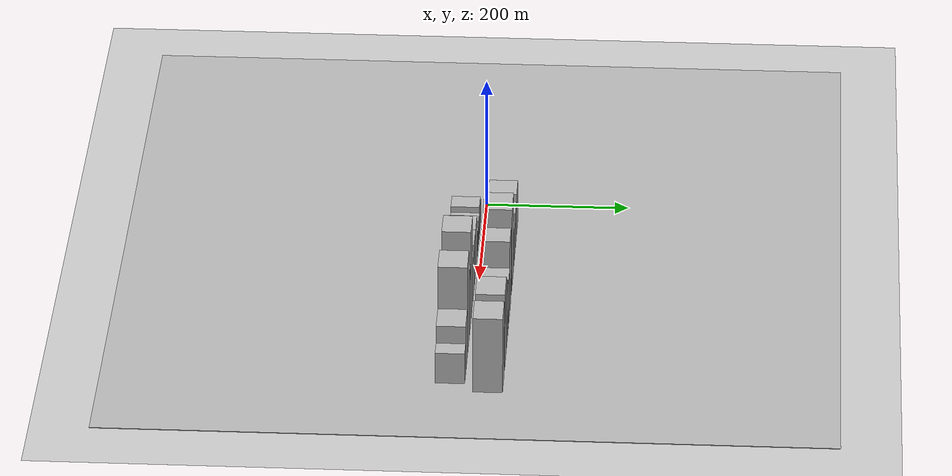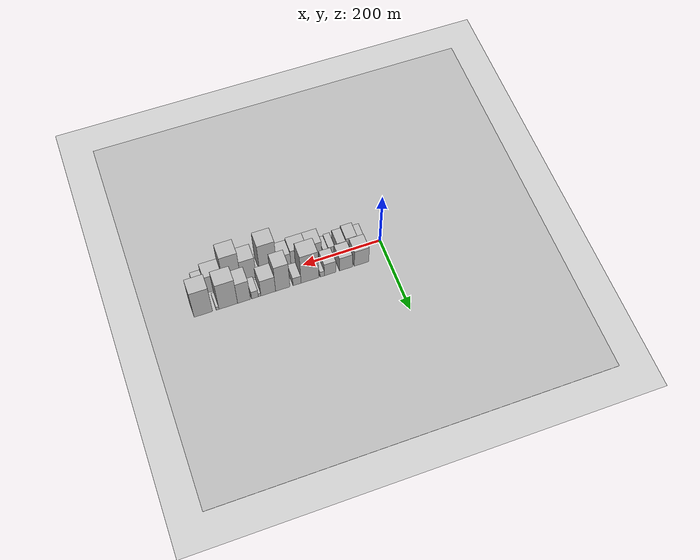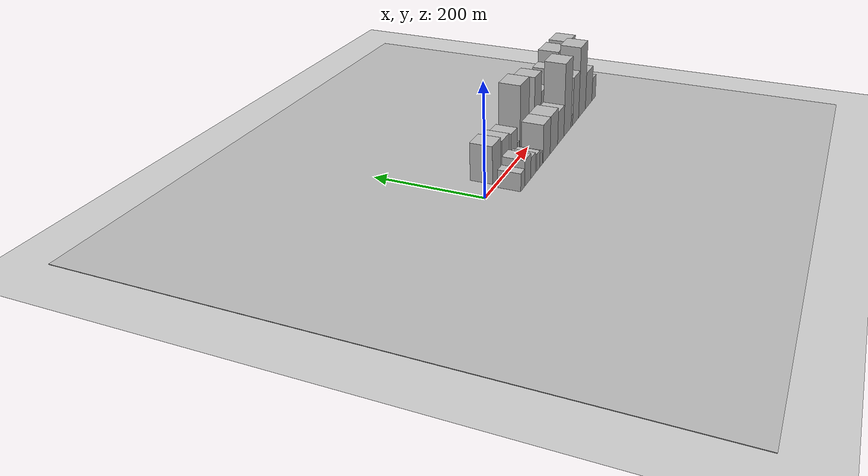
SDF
<?xml version="1.0" encoding="utf-8"?>

<sdf version="1.6">

   <world name="default">

      <gui fullscreen="0">

         <camera name="user_camera">

            <pose>-15 0 4.57585 0 0 0</pose>

            <view_controller>orbit</view_controller>

         </camera>

      </gui>

      <scene>

         <sky>

           <clouds>

             <speed>12</speed>

           </clouds>

         </sky>

         <ambient>0.4 0.4 0.4 1</ambient>

         <background>0.7 0.7 0.7 1</background>

         <shadows>1</shadows>

      </scene>

      <gravity>0 0 -9.8066</gravity>

      <magnetic_field>6e-06 2.3e-05 -4.2e-05</magnetic_field>

      <physics default="0" name="default_physics" type="ode">

         <ode>

            <solver>

               <type>quick</type>

               <iters>10</iters>

               <sor>1.0</sor>

               <use_dynamic_moi_rescaling>0</use_dynamic_moi_rescaling>

            </solver>

            <constraints>

               <cfm>0</cfm>

               <erp>0.2</erp>

               <contact_max_correcting_vel>100</contact_max_correcting_vel>

               <contact_surface_layer>0.001</contact_surface_layer>

            </constraints>

         </ode>

         <max_step_size>0.004</max_step_size>

         <real_time_factor>1</real_time_factor>

         <real_time_update_rate>250</real_time_update_rate>

      </physics>

      <light name="sun" type="directional">

         <cast_shadows>1</cast_shadows>

         <pose>0 0 10 0 0 0</pose>

         <diffuse>0.8 0.8 0.8 1</diffuse>

         <specular>0.2 0.2 0.2 1</specular>

         <attenuation>

            <range>1000</range>

            <constant>0.9</constant>

            <linear>0.01</linear>

            <quadratic>0.001</quadratic>

         </attenuation>

         <direction>-0.5 0.1 -0.9</direction>

      </light>

      <include>

         <name>ground_plane_1</name>

         <uri>model://HANNAS_ground_plane</uri>

         <pose>0 0 0  0 0 0</pose>

      </include>

      <include>

         <name>ground_plane_2</name>

         <uri>model://HANNAS_ground_plane</uri>

         <pose>100 0 0  0 0 0</pose>

      </include>

      <model name="building_1">

         <static>1</static>

         <pose frame="">65.7065 26.0000 0 0.000000 0.000000 1.570796</pose>

         <link name="link">

            <pose frame="">0 0 34.50 0 0 0</pose>

            <collision name="collision">

               <geometry>

                  <box>

                     <size>40.0000 37.4130 69.0000</size>

                  </box>

               </geometry>

               <max_contacts>10</max_contacts>

               <surface>

                  <contact>

                     <ode/>

                  </contact>

                  <bounce/>

                  <friction>

                     <torsional>

                        <ode/>

                     </torsional>

                     <ode/>

                  </friction>

               </surface>

            </collision>

            <visual name="visual">

               <cast_shadows>0</cast_shadows>

               <geometry>

                  <box>

                     <size>40.0000 37.4130 69.0000</size>

                  </box>

               </geometry>

               <material>

                  <script>

                     <uri>model://HANNAS_wall/materials/scripts</uri>

                     <uri>model://HANNAS_wall/materials/textures</uri>

                     <name>vrc/HANNAS_wall</name>

                  </script>

               </material>

            </visual>

            <self_collide>0</self_collide>

            <enable_wind>0</enable_wind>

            <kinematic>0</kinematic>

         </link>

      </model>

      <model name="building_2">

         <static>1</static>

         <pose frame="">105.9362 26.0000 0 0.000000 0.000000 1.570796</pose>

         <link name="link">

            <pose frame="">0 0 30.00 0 0 0</pose>

            <collision name="collision">

               <geometry>

                  <box>

                     <size>40.0000 33.0465 60.0000</size>

                  </box>

               </geometry>

               <max_contacts>10</max_contacts>

               <surface>

                  <contact>

                     <ode/>

                  </contact>

                  <bounce/>

                  <friction>

                     <torsional>

                        <ode/>

                     </torsional>

                     <ode/>

                  </friction>

               </surface>

            </collision>

            <visual name="visual">

               <cast_shadows>0</cast_shadows>

               <geometry>

                  <box>

                     <size>40.0000 33.0465 60.0000</size>

                  </box>

               </geometry>

               <material>

                  <script>

                     <uri>model://HANNAS_wall/materials/scripts</uri>

                     <uri>model://HANNAS_wall/materials/textures</uri>

                     <name>vrc/HANNAS_wall</name>

                  </script>

               </material>

            </visual>

            <self_collide>0</self_collide>

            <enable_wind>0</enable_wind>

            <kinematic>0</kinematic>

         </link>

      </model>

      <model name="building_3">

         <static>1</static>

         <pose frame="">146.3972 26.0000 0 0.000000 0.000000 1.570796</pose>

         <link name="link">

            <pose frame="">0 0 27.00 0 0 0</pose>

            <collision name="collision">

               <geometry>

                  <box>

                     <size>40.0000 29.8755 54.0000</size>

                  </box>

               </geometry>

               <max_contacts>10</max_contacts>

               <surface>

                  <contact>

                     <ode/>

                  </contact>

                  <bounce/>

                  <friction>

                     <torsional>

                        <ode/>

                     </torsional>

                     <ode/>

                  </friction>

               </surface>

            </collision>

            <visual name="visual">

               <cast_shadows>0</cast_shadows>

               <geometry>

                  <box>

                     <size>40.0000 29.8755 54.0000</size>

                  </box>

               </geometry>

               <material>

                  <script>

                     <uri>model://HANNAS_wall/materials/scripts</uri>

                     <uri>model://HANNAS_wall/materials/textures</uri>

                     <name>vrc/HANNAS_wall</name>

                  </script>

               </material>

            </visual>

            <self_collide>0</self_collide>

            <enable_wind>0</enable_wind>

            <kinematic>0</kinematic>

         </link>

      </model>

      <model name="building_4">

         <static>1</static>

         <pose frame="">166.8836 26.0000 0 0.000000 0.000000 1.570796</pose>

         <link name="link">

            <pose frame="">0 0 12.00 0 0 0</pose>

            <collision name="collision">

               <geometry>

                  <box>

                     <size>40.0000 11.0972 24.0000</size>

                  </box>

               </geometry>

               <max_contacts>10</max_contacts>

               <surface>

                  <contact>

                     <ode/>

                  </contact>

                  <bounce/>

                  <friction>

                     <torsional>

                        <ode/>

                     </torsional>

                     <ode/>

                  </friction>

               </surface>

            </collision>

            <visual name="visual">

               <cast_shadows>0</cast_shadows>

               <geometry>

                  <box>

                     <size>40.0000 11.0972 24.0000</size>

                  </box>

               </geometry>

               <material>

                  <script>

                     <uri>model://HANNAS_wall/materials/scripts</uri>

                     <uri>model://HANNAS_wall/materials/textures</uri>

                     <name>vrc/HANNAS_wall</name>

                  </script>

               </material>

            </visual>

            <self_collide>0</self_collide>

            <enable_wind>0</enable_wind>

            <kinematic>0</kinematic>

         </link>

      </model>

      <model name="building_5">

         <static>1</static>

         <pose frame="">198.0467 26.0000 0 0.000000 0.000000 1.570796</pose>

         <link name="link">

            <pose frame="">0 0 63.00 0 0 0</pose>

            <collision name="collision">

               <geometry>

                  <box>

                     <size>40.0000 45.2291 126.0000</size>

                  </box>

               </geometry>

               <max_contacts>10</max_contacts>

               <surface>

                  <contact>

                     <ode/>

                  </contact>

                  <bounce/>

                  <friction>

                     <torsional>

                        <ode/>

                     </torsional>

                     <ode/>

                  </friction>

               </surface>

            </collision>

            <visual name="visual">

               <cast_shadows>0</cast_shadows>

               <geometry>

                  <box>

                     <size>40.0000 45.2291 126.0000</size>

                  </box>

               </geometry>

               <material>

                  <script>

                     <uri>model://HANNAS_wall/materials/scripts</uri>

                     <uri>model://HANNAS_wall/materials/textures</uri>

                     <name>vrc/HANNAS_wall</name>

                  </script>

               </material>

            </visual>

            <self_collide>0</self_collide>

            <enable_wind>0</enable_wind>

            <kinematic>0</kinematic>

         </link>

      </model>

      <model name="building_6">

         <static>1</static>

         <pose frame="">230.7759 26.0000 0 0.000000 0.000000 1.570796</pose>

         <link name="link">

            <pose frame="">0 0 18.00 0 0 0</pose>

            <collision name="collision">

               <geometry>

                  <box>

                     <size>40.0000 20.2292 36.0000</size>

                  </box>

               </geometry>

               <max_contacts>10</max_contacts>

               <surface>

                  <contact>

                     <ode/>

                  </contact>

                  <bounce/>

                  <friction>

                     <torsional>

                        <ode/>

                     </torsional>

                     <ode/>

                  </friction>

               </surface>

            </collision>

            <visual name="visual">

               <cast_shadows>0</cast_shadows>

               <geometry>

                  <box>

                     <size>40.0000 20.2292 36.0000</size>

                  </box>

               </geometry>

               <material>

                  <script>

                     <uri>model://HANNAS_wall/materials/scripts</uri>

                     <uri>model://HANNAS_wall/materials/textures</uri>

                     <name>vrc/HANNAS_wall</name>

                  </script>

               </material>

            </visual>

            <self_collide>0</self_collide>

            <enable_wind>0</enable_wind>

            <kinematic>0</kinematic>

         </link>

      </model>

      <model name="building_7">

         <static>1</static>

         <pose frame="">266.9222 26.0000 0 0.000000 0.000000 1.570796</pose>

         <link name="link">

            <pose frame="">0 0 57.00 0 0 0</pose>

            <collision name="collision">

               <geometry>

                  <box>

                     <size>40.0000 36.0636 114.0000</size>

                  </box>

               </geometry>

               <max_contacts>10</max_contacts>

               <surface>

                  <contact>

                     <ode/>

                  </contact>

                  <bounce/>

                  <friction>

                     <torsional>

                        <ode/>

                     </torsional>

                     <ode/>

                  </friction>

               </surface>

            </collision>

            <visual name="visual">

               <cast_shadows>0</cast_shadows>

               <geometry>

                  <box>

                     <size>40.0000 36.0636 114.0000</size>

                  </box>

               </geometry>

               <material>

                  <script>

                     <uri>model://HANNAS_wall/materials/scripts</uri>

                     <uri>model://HANNAS_wall/materials/textures</uri>

                     <name>vrc/HANNAS_wall</name>

                  </script>

               </material>

            </visual>

            <self_collide>0</self_collide>

            <enable_wind>0</enable_wind>

            <kinematic>0</kinematic>

         </link>

      </model>

      <model name="building_8">

         <static>1</static>

         <pose frame="">303.3966 26.0000 0 0.000000 0.000000 1.570796</pose>

         <link name="link">

            <pose frame="">0 0 36.00 0 0 0</pose>

            <collision name="collision">

               <geometry>

                  <box>

                     <size>40.0000 36.8851 72.0000</size>

                  </box>

               </geometry>

               <max_contacts>10</max_contacts>

               <surface>

                  <contact>

                     <ode/>

                  </contact>

                  <bounce/>

                  <friction>

                     <torsional>

                        <ode/>

                     </torsional>

                     <ode/>

                  </friction>

               </surface>

            </collision>

            <visual name="visual">

               <cast_shadows>0</cast_shadows>

               <geometry>

                  <box>

                     <size>40.0000 36.8851 72.0000</size>

                  </box>

               </geometry>

               <material>

                  <script>

                     <uri>model://HANNAS_wall/materials/scripts</uri>

                     <uri>model://HANNAS_wall/materials/textures</uri>

                     <name>vrc/HANNAS_wall</name>

                  </script>

               </material>

            </visual>

            <self_collide>0</self_collide>

            <enable_wind>0</enable_wind>

            <kinematic>0</kinematic>

         </link>

      </model>

      <model name="building_9">

         <static>1</static>

         <pose frame="">325.0866 26.0000 0 0.000000 0.000000 1.570796</pose>

         <link name="link">

            <pose frame="">0 0 7.50 0 0 0</pose>

            <collision name="collision">

               <geometry>

                  <box>

                     <size>40.0000 6.4950 15.0000</size>

                  </box>

               </geometry>

               <max_contacts>10</max_contacts>

               <surface>

                  <contact>

                     <ode/>

                  </contact>

                  <bounce/>

                  <friction>

                     <torsional>

                        <ode/>

                     </torsional>

                     <ode/>

                  </friction>

               </surface>

            </collision>

            <visual name="visual">

               <cast_shadows>0</cast_shadows>

               <geometry>

                  <box>

                     <size>40.0000 6.4950 15.0000</size>

                  </box>

               </geometry>

               <material>

                  <script>

                     <uri>model://HANNAS_wall/materials/scripts</uri>

                     <uri>model://HANNAS_wall/materials/textures</uri>

                     <name>vrc/HANNAS_wall</name>

                  </script>

               </material>

            </visual>

            <self_collide>0</self_collide>

            <enable_wind>0</enable_wind>

            <kinematic>0</kinematic>

         </link>

      </model>

      <model name="building_10">

         <static>1</static>

         <pose frame="">336.6937 26.0000 0 0.000000 0.000000 1.570796</pose>

         <link name="link">

            <pose frame="">0 0 16.50 0 0 0</pose>

            <collision name="collision">

               <geometry>

                  <box>

                     <size>40.0000 16.7191 33.0000</size>

                  </box>

               </geometry>

               <max_contacts>10</max_contacts>

               <surface>

                  <contact>

                     <ode/>

                  </contact>

                  <bounce/>

                  <friction>

                     <torsional>

                        <ode/>

                     </torsional>

                     <ode/>

                  </friction>

               </surface>

            </collision>

            <visual name="visual">

               <cast_shadows>0</cast_shadows>

               <geometry>

                  <box>

                     <size>40.0000 16.7191 33.0000</size>

                  </box>

               </geometry>

               <material>

                  <script>

                     <uri>model://HANNAS_wall/materials/scripts</uri>

                     <uri>model://HANNAS_wall/materials/textures</uri>

                     <name>vrc/HANNAS_wall</name>

                  </script>

               </material>

            </visual>

            <self_collide>0</self_collide>

            <enable_wind>0</enable_wind>

            <kinematic>0</kinematic>

         </link>

      </model>

      <model name="building_11">

         <static>1</static>

         <pose frame="">364.0488 26.0000 0 0.000000 0.000000 1.570796</pose>

         <link name="link">

            <pose frame="">0 0 46.50 0 0 0</pose>

            <collision name="collision">

               <geometry>

                  <box>

                     <size>40.0000 31.9910 93.0000</size>

                  </box>

               </geometry>

               <max_contacts>10</max_contacts>

               <surface>

                  <contact>

                     <ode/>

                  </contact>

                  <bounce/>

                  <friction>

                     <torsional>

                        <ode/>

                     </torsional>

                     <ode/>

                  </friction>

               </surface>

            </collision>

            <visual name="visual">

               <cast_shadows>0</cast_shadows>

               <geometry>

                  <box>

                     <size>40.0000 31.9910 93.0000</size>

                  </box>

               </geometry>

               <material>

                  <script>

                     <uri>model://HANNAS_wall/materials/scripts</uri>

                     <uri>model://HANNAS_wall/materials/textures</uri>

                     <name>vrc/HANNAS_wall</name>

                  </script>

               </material>

            </visual>

            <self_collide>0</self_collide>

            <enable_wind>0</enable_wind>

            <kinematic>0</kinematic>

         </link>

      </model>

      <model name="building_12">

         <static>1</static>

         <pose frame="">403.1785 26.0000 0 0.000000 0.000000 1.570796</pose>

         <link name="link">

            <pose frame="">0 0 58.50 0 0 0</pose>

            <collision name="collision">

               <geometry>

                  <box>

                     <size>40.0000 46.2685 117.0000</size>

                  </box>

               </geometry>

               <max_contacts>10</max_contacts>

               <surface>

                  <contact>

                     <ode/>

                  </contact>

                  <bounce/>

                  <friction>

                     <torsional>

                        <ode/>

                     </torsional>

                     <ode/>

                  </friction>

               </surface>

            </collision>

            <visual name="visual">

               <cast_shadows>0</cast_shadows>

               <geometry>

                  <box>

                     <size>40.0000 46.2685 117.0000</size>

                  </box>

               </geometry>

               <material>

                  <script>

                     <uri>model://HANNAS_wall/materials/scripts</uri>

                     <uri>model://HANNAS_wall/materials/textures</uri>

                     <name>vrc/HANNAS_wall</name>

                  </script>

               </material>

            </visual>

            <self_collide>0</self_collide>

            <enable_wind>0</enable_wind>

            <kinematic>0</kinematic>

         </link>

      </model>

      <model name="building_13">

         <static>1</static>

         <pose frame="">429.7338 26.0000 0 0.000000 0.000000 1.570796</pose>

         <link name="link">

            <pose frame="">0 0 7.50 0 0 0</pose>

            <collision name="collision">

               <geometry>

                  <box>

                     <size>40.0000 6.8422 15.0000</size>

                  </box>

               </geometry>

               <max_contacts>10</max_contacts>

               <surface>

                  <contact>

                     <ode/>

                  </contact>

                  <bounce/>

                  <friction>

                     <torsional>

                        <ode/>

                     </torsional>

                     <ode/>

                  </friction>

               </surface>

            </collision>

            <visual name="visual">

               <cast_shadows>0</cast_shadows>

               <geometry>

                  <box>

                     <size>40.0000 6.8422 15.0000</size>

                  </box>

               </geometry>

               <material>

                  <script>

                     <uri>model://HANNAS_wall/materials/scripts</uri>

                     <uri>model://HANNAS_wall/materials/textures</uri>

                     <name>vrc/HANNAS_wall</name>

                  </script>

               </material>

            </visual>

            <self_collide>0</self_collide>

            <enable_wind>0</enable_wind>

            <kinematic>0</kinematic>

         </link>

      </model>

      <model name="building_14">

         <static>1</static>

         <pose frame="">464.8556 26.0000 0 0.000000 0.000000 1.570796</pose>

         <link name="link">

            <pose frame="">0 0 58.50 0 0 0</pose>

            <collision name="collision">

               <geometry>

                  <box>

                     <size>40.0000 45.4014 117.0000</size>

                  </box>

               </geometry>

               <max_contacts>10</max_contacts>

               <surface>

                  <contact>

                     <ode/>

                  </contact>

                  <bounce/>

                  <friction>

                     <torsional>

                        <ode/>

                     </torsional>

                     <ode/>

                  </friction>

               </surface>

            </collision>

            <visual name="visual">

               <cast_shadows>0</cast_shadows>

               <geometry>

                  <box>

                     <size>40.0000 45.4014 117.0000</size>

                  </box>

               </geometry>

               <material>

                  <script>

                     <uri>model://HANNAS_wall/materials/scripts</uri>

                     <uri>model://HANNAS_wall/materials/textures</uri>

                     <name>vrc/HANNAS_wall</name>

                  </script>

               </material>

            </visual>

            <self_collide>0</self_collide>

            <enable_wind>0</enable_wind>

            <kinematic>0</kinematic>

         </link>

      </model>

      <model name="building_15">

         <static>1</static>

         <pose frame="">49.3920 -26.0000 0 0.000000 0.000000 1.570796</pose>

         <link name="link">

            <pose frame="">0 0 16.50 0 0 0</pose>

            <collision name="collision">

               <geometry>

                  <box>

                     <size>40.0000 18.7839 33.0000</size>

                  </box>

               </geometry>

               <max_contacts>10</max_contacts>

               <surface>

                  <contact>

                     <ode/>

                  </contact>

                  <bounce/>

                  <friction>

                     <torsional>

                        <ode/>

                     </torsional>

                     <ode/>

                  </friction>

               </surface>

            </collision>

            <visual name="visual">

               <cast_shadows>0</cast_shadows>

               <geometry>

                  <box>

                     <size>40.0000 18.7839 33.0000</size>

                  </box>

               </geometry>

               <material>

                  <script>

                     <uri>model://HANNAS_wall/materials/scripts</uri>

                     <uri>model://HANNAS_wall/materials/textures</uri>

                     <name>vrc/HANNAS_wall</name>

                  </script>

               </material>

            </visual>

            <self_collide>0</self_collide>

            <enable_wind>0</enable_wind>

            <kinematic>0</kinematic>

         </link>

      </model>

      <model name="building_16">

         <static>1</static>

         <pose frame="">73.0712 -26.0000 0 0.000000 0.000000 1.570796</pose>

         <link name="link">

            <pose frame="">0 0 24.00 0 0 0</pose>

            <collision name="collision">

               <geometry>

                  <box>

                     <size>40.0000 28.5745 48.0000</size>

                  </box>

               </geometry>

               <max_contacts>10</max_contacts>

               <surface>

                  <contact>

                     <ode/>

                  </contact>

                  <bounce/>

                  <friction>

                     <torsional>

                        <ode/>

                     </torsional>

                     <ode/>

                  </friction>

               </surface>

            </collision>

            <visual name="visual">

               <cast_shadows>0</cast_shadows>

               <geometry>

                  <box>

                     <size>40.0000 28.5745 48.0000</size>

                  </box>

               </geometry>

               <material>

                  <script>

                     <uri>model://HANNAS_wall/materials/scripts</uri>

                     <uri>model://HANNAS_wall/materials/textures</uri>

                     <name>vrc/HANNAS_wall</name>

                  </script>

               </material>

            </visual>

            <self_collide>0</self_collide>

            <enable_wind>0</enable_wind>

            <kinematic>0</kinematic>

         </link>

      </model>

      <model name="building_17">

         <static>1</static>

         <pose frame="">98.7270 -26.0000 0 0.000000 0.000000 1.570796</pose>

         <link name="link">

            <pose frame="">0 0 19.50 0 0 0</pose>

            <collision name="collision">

               <geometry>

                  <box>

                     <size>40.0000 22.7371 39.0000</size>

                  </box>

               </geometry>

               <max_contacts>10</max_contacts>

               <surface>

                  <contact>

                     <ode/>

                  </contact>

                  <bounce/>

                  <friction>

                     <torsional>

                        <ode/>

                     </torsional>

                     <ode/>

                  </friction>

               </surface>

            </collision>

            <visual name="visual">

               <cast_shadows>0</cast_shadows>

               <geometry>

                  <box>

                     <size>40.0000 22.7371 39.0000</size>

                  </box>

               </geometry>

               <material>

                  <script>

                     <uri>model://HANNAS_wall/materials/scripts</uri>

                     <uri>model://HANNAS_wall/materials/textures</uri>

                     <name>vrc/HANNAS_wall</name>

                  </script>

               </material>

            </visual>

            <self_collide>0</self_collide>

            <enable_wind>0</enable_wind>

            <kinematic>0</kinematic>

         </link>

      </model>

      <model name="building_18">

         <static>1</static>

         <pose frame="">124.3681 -26.0000 0 0.000000 0.000000 1.570796</pose>

         <link name="link">

            <pose frame="">0 0 16.50 0 0 0</pose>

            <collision name="collision">

               <geometry>

                  <box>

                     <size>40.0000 16.5450 33.0000</size>

                  </box>

               </geometry>

               <max_contacts>10</max_contacts>

               <surface>

                  <contact>

                     <ode/>

                  </contact>

                  <bounce/>

                  <friction>

                     <torsional>

                        <ode/>

                     </torsional>

                     <ode/>

                  </friction>

               </surface>

            </collision>

            <visual name="visual">

               <cast_shadows>0</cast_shadows>

               <geometry>

                  <box>

                     <size>40.0000 16.5450 33.0000</size>

                  </box>

               </geometry>

               <material>

                  <script>

                     <uri>model://HANNAS_wall/materials/scripts</uri>

                     <uri>model://HANNAS_wall/materials/textures</uri>

                     <name>vrc/HANNAS_wall</name>

                  </script>

               </material>

            </visual>

            <self_collide>0</self_collide>

            <enable_wind>0</enable_wind>

            <kinematic>0</kinematic>

         </link>

      </model>

      <model name="building_19">

         <static>1</static>

         <pose frame="">139.1101 -26.0000 0 0.000000 0.000000 1.570796</pose>

         <link name="link">

            <pose frame="">0 0 13.50 0 0 0</pose>

            <collision name="collision">

               <geometry>

                  <box>

                     <size>40.0000 12.9389 27.0000</size>

                  </box>

               </geometry>

               <max_contacts>10</max_contacts>

               <surface>

                  <contact>

                     <ode/>

                  </contact>

                  <bounce/>

                  <friction>

                     <torsional>

                        <ode/>

                     </torsional>

                     <ode/>

                  </friction>

               </surface>

            </collision>

            <visual name="visual">

               <cast_shadows>0</cast_shadows>

               <geometry>

                  <box>

                     <size>40.0000 12.9389 27.0000</size>

                  </box>

               </geometry>

               <material>

                  <script>

                     <uri>model://HANNAS_wall/materials/scripts</uri>

                     <uri>model://HANNAS_wall/materials/textures</uri>

                     <name>vrc/HANNAS_wall</name>

                  </script>

               </material>

            </visual>

            <self_collide>0</self_collide>

            <enable_wind>0</enable_wind>

            <kinematic>0</kinematic>

         </link>

      </model>

      <model name="building_20">

         <static>1</static>

         <pose frame="">168.1830 -26.0000 0 0.000000 0.000000 1.570796</pose>

         <link name="link">

            <pose frame="">0 0 36.00 0 0 0</pose>

            <collision name="collision">

               <geometry>

                  <box>

                     <size>40.0000 37.2070 72.0000</size>

                  </box>

               </geometry>

               <max_contacts>10</max_contacts>

               <surface>

                  <contact>

                     <ode/>

                  </contact>

                  <bounce/>

                  <friction>

                     <torsional>

                        <ode/>

                     </torsional>

                     <ode/>

                  </friction>

               </surface>

            </collision>

            <visual name="visual">

               <cast_shadows>0</cast_shadows>

               <geometry>

                  <box>

                     <size>40.0000 37.2070 72.0000</size>

                  </box>

               </geometry>

               <material>

                  <script>

                     <uri>model://HANNAS_wall/materials/scripts</uri>

                     <uri>model://HANNAS_wall/materials/textures</uri>

                     <name>vrc/HANNAS_wall</name>

                  </script>

               </material>

            </visual>

            <self_collide>0</self_collide>

            <enable_wind>0</enable_wind>

            <kinematic>0</kinematic>

         </link>

      </model>

      <model name="building_21">

         <static>1</static>

         <pose frame="">207.6765 -26.0000 0 0.000000 0.000000 1.570796</pose>

         <link name="link">

            <pose frame="">0 0 36.00 0 0 0</pose>

            <collision name="collision">

               <geometry>

                  <box>

                     <size>40.0000 41.7799 72.0000</size>

                  </box>

               </geometry>

               <max_contacts>10</max_contacts>

               <surface>

                  <contact>

                     <ode/>

                  </contact>

                  <bounce/>

                  <friction>

                     <torsional>

                        <ode/>

                     </torsional>

                     <ode/>

                  </friction>

               </surface>

            </collision>

            <visual name="visual">

               <cast_shadows>0</cast_shadows>

               <geometry>

                  <box>

                     <size>40.0000 41.7799 72.0000</size>

                  </box>

               </geometry>

               <material>

                  <script>

                     <uri>model://HANNAS_wall/materials/scripts</uri>

                     <uri>model://HANNAS_wall/materials/textures</uri>

                     <name>vrc/HANNAS_wall</name>

                  </script>

               </material>

            </visual>

            <self_collide>0</self_collide>

            <enable_wind>0</enable_wind>

            <kinematic>0</kinematic>

         </link>

      </model>

      <model name="building_22">

         <static>1</static>

         <pose frame="">246.3344 -26.0000 0 0.000000 0.000000 1.570796</pose>

         <link name="link">

            <pose frame="">0 0 31.50 0 0 0</pose>

            <collision name="collision">

               <geometry>

                  <box>

                     <size>40.0000 35.5359 63.0000</size>

                  </box>

               </geometry>

               <max_contacts>10</max_contacts>

               <surface>

                  <contact>

                     <ode/>

                  </contact>

                  <bounce/>

                  <friction>

                     <torsional>

                        <ode/>

                     </torsional>

                     <ode/>

                  </friction>

               </surface>

            </collision>

            <visual name="visual">

               <cast_shadows>0</cast_shadows>

               <geometry>

                  <box>

                     <size>40.0000 35.5359 63.0000</size>

                  </box>

               </geometry>

               <material>

                  <script>

                     <uri>model://HANNAS_wall/materials/scripts</uri>

                     <uri>model://HANNAS_wall/materials/textures</uri>

                     <name>vrc/HANNAS_wall</name>

                  </script>

               </material>

            </visual>

            <self_collide>0</self_collide>

            <enable_wind>0</enable_wind>

            <kinematic>0</kinematic>

         </link>

      </model>

      <model name="building_23">

         <static>1</static>

         <pose frame="">285.4717 -26.0000 0 0.000000 0.000000 1.570796</pose>

         <link name="link">

            <pose frame="">0 0 70.50 0 0 0</pose>

            <collision name="collision">

               <geometry>

                  <box>

                     <size>40.0000 42.7387 141.0000</size>

                  </box>

               </geometry>

               <max_contacts>10</max_contacts>

               <surface>

                  <contact>

                     <ode/>

                  </contact>

                  <bounce/>

                  <friction>

                     <torsional>

                        <ode/>

                     </torsional>

                     <ode/>

                  </friction>

               </surface>

            </collision>

            <visual name="visual">

               <cast_shadows>0</cast_shadows>

               <geometry>

                  <box>

                     <size>40.0000 42.7387 141.0000</size>

                  </box>

               </geometry>

               <material>

                  <script>

                     <uri>model://HANNAS_wall/materials/scripts</uri>

                     <uri>model://HANNAS_wall/materials/textures</uri>

                     <name>vrc/HANNAS_wall</name>

                  </script>

               </material>

            </visual>

            <self_collide>0</self_collide>

            <enable_wind>0</enable_wind>

            <kinematic>0</kinematic>

         </link>

      </model>

      <model name="building_24">

         <static>1</static>

         <pose frame="">311.6686 -26.0000 0 0.000000 0.000000 1.570796</pose>

         <link name="link">

            <pose frame="">0 0 12.00 0 0 0</pose>

            <collision name="collision">

               <geometry>

                  <box>

                     <size>40.0000 9.6551 24.0000</size>

                  </box>

               </geometry>

               <max_contacts>10</max_contacts>

               <surface>

                  <contact>

                     <ode/>

                  </contact>

                  <bounce/>

                  <friction>

                     <torsional>

                        <ode/>

                     </torsional>

                     <ode/>

                  </friction>

               </surface>

            </collision>

            <visual name="visual">

               <cast_shadows>0</cast_shadows>

               <geometry>

                  <box>

                     <size>40.0000 9.6551 24.0000</size>

                  </box>

               </geometry>

               <material>

                  <script>

                     <uri>model://HANNAS_wall/materials/scripts</uri>

                     <uri>model://HANNAS_wall/materials/textures</uri>

                     <name>vrc/HANNAS_wall</name>

                  </script>

               </material>

            </visual>

            <self_collide>0</self_collide>

            <enable_wind>0</enable_wind>

            <kinematic>0</kinematic>

         </link>

      </model>

      <model name="building_25">

         <static>1</static>

         <pose frame="">335.5545 -26.0000 0 0.000000 0.000000 1.570796</pose>

         <link name="link">

            <pose frame="">0 0 48.00 0 0 0</pose>

            <collision name="collision">

               <geometry>

                  <box>

                     <size>40.0000 38.1167 96.0000</size>

                  </box>

               </geometry>

               <max_contacts>10</max_contacts>

               <surface>

                  <contact>

                     <ode/>

                  </contact>

                  <bounce/>

                  <friction>

                     <torsional>

                        <ode/>

                     </torsional>

                     <ode/>

                  </friction>

               </surface>

            </collision>

            <visual name="visual">

               <cast_shadows>0</cast_shadows>

               <geometry>

                  <box>

                     <size>40.0000 38.1167 96.0000</size>

                  </box>

               </geometry>

               <material>

                  <script>

                     <uri>model://HANNAS_wall/materials/scripts</uri>

                     <uri>model://HANNAS_wall/materials/textures</uri>

                     <name>vrc/HANNAS_wall</name>

                  </script>

               </material>

            </visual>

            <self_collide>0</self_collide>

            <enable_wind>0</enable_wind>

            <kinematic>0</kinematic>

         </link>

      </model>

      <model name="building_26">

         <static>1</static>

         <pose frame="">376.4660 -26.0000 0 0.000000 0.000000 1.570796</pose>

         <link name="link">

            <pose frame="">0 0 70.50 0 0 0</pose>

            <collision name="collision">

               <geometry>

                  <box>

                     <size>40.0000 43.7062 141.0000</size>

                  </box>

               </geometry>

               <max_contacts>10</max_contacts>

               <surface>

                  <contact>

                     <ode/>

                  </contact>

                  <bounce/>

                  <friction>

                     <torsional>

                        <ode/>

                     </torsional>

                     <ode/>

                  </friction>

               </surface>

            </collision>

            <visual name="visual">

               <cast_shadows>0</cast_shadows>

               <geometry>

                  <box>

                     <size>40.0000 43.7062 141.0000</size>

                  </box>

               </geometry>

               <material>

                  <script>

                     <uri>model://HANNAS_wall/materials/scripts</uri>

                     <uri>model://HANNAS_wall/materials/textures</uri>

                     <name>vrc/HANNAS_wall</name>

                  </script>

               </material>

            </visual>

            <self_collide>0</self_collide>

            <enable_wind>0</enable_wind>

            <kinematic>0</kinematic>

         </link>

      </model>

      <model name="building_27">

         <static>1</static>

         <pose frame="">420.3613 -26.0000 0 0.000000 0.000000 1.570796</pose>

         <link name="link">

            <pose frame="">0 0 37.50 0 0 0</pose>

            <collision name="collision">

               <geometry>

                  <box>

                     <size>40.0000 44.0845 75.0000</size>

                  </box>

               </geometry>

               <max_contacts>10</max_contacts>

               <surface>

                  <contact>

                     <ode/>

                  </contact>

                  <bounce/>

                  <friction>

                     <torsional>

                        <ode/>

                     </torsional>

                     <ode/>

                  </friction>

               </surface>

            </collision>

            <visual name="visual">

               <cast_shadows>0</cast_shadows>

               <geometry>

                  <box>

                     <size>40.0000 44.0845 75.0000</size>

                  </box>

               </geometry>

               <material>

                  <script>

                     <uri>model://HANNAS_wall/materials/scripts</uri>

                     <uri>model://HANNAS_wall/materials/textures</uri>

                     <name>vrc/HANNAS_wall</name>

                  </script>

               </material>

            </visual>

            <self_collide>0</self_collide>

            <enable_wind>0</enable_wind>

            <kinematic>0</kinematic>

         </link>

      </model>

      <model name="building_28">

         <static>1</static>

         <pose frame="">455.1035 -26.0000 0 0.000000 0.000000 1.570796</pose>

         <link name="link">

            <pose frame="">0 0 24.00 0 0 0</pose>

            <collision name="collision">

               <geometry>

                  <box>

                     <size>40.0000 25.3998 48.0000</size>

                  </box>

               </geometry>

               <max_contacts>10</max_contacts>

               <surface>

                  <contact>

                     <ode/>

                  </contact>

                  <bounce/>

                  <friction>

                     <torsional>

                        <ode/>

                     </torsional>

                     <ode/>

                  </friction>

               </surface>

            </collision>

            <visual name="visual">

               <cast_shadows>0</cast_shadows>

               <geometry>

                  <box>

                     <size>40.0000 25.3998 48.0000</size>

                  </box>

               </geometry>

               <material>

                  <script>

                     <uri>model://HANNAS_wall/materials/scripts</uri>

                     <uri>model://HANNAS_wall/materials/textures</uri>

                     <name>vrc/HANNAS_wall</name>

                  </script>

               </material>

            </visual>

            <self_collide>0</self_collide>

            <enable_wind>0</enable_wind>

            <kinematic>0</kinematic>

         </link>

      </model>

   </world>

</sdf>

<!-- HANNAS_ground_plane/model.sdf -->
<sdf version="1.4">
<model name="HANNAS_ground_plane">
  <static>true</static>
    <link name="link">
      <collision name="collision">
        <geometry>
          <plane>
            <normal>0 0 1</normal>
            <size>1000 1000</size>
          </plane>
        </geometry>
        <surface>
          <friction>
            <ode>
              <mu>100</mu>
              <mu2>50</mu2>
            </ode>
          </friction>
        </surface>
      </collision>
      <visual name="visual">
        <cast_shadows>false</cast_shadows>
        <geometry>
          <plane>
            <normal>0 0 1</normal>
            <size>1000 1000</size>
          </plane>
        </geometry>
        <material>
          <script>
            <uri>model://HANNAS_ground_plane/materials/scripts/HANNAS_ground_plane.material</uri>
	    <uri>model://HANNAS_ground_plane/materials/textures</uri>
            <name>HANNASGroundPlane/Image</name>
          </script>
        </material>
      </visual>
    </link>
  </model>
</sdf>
